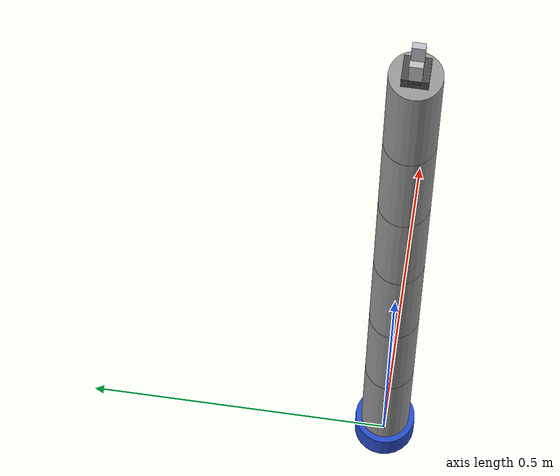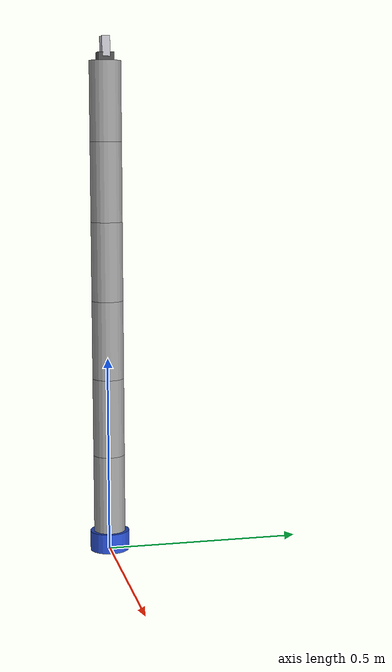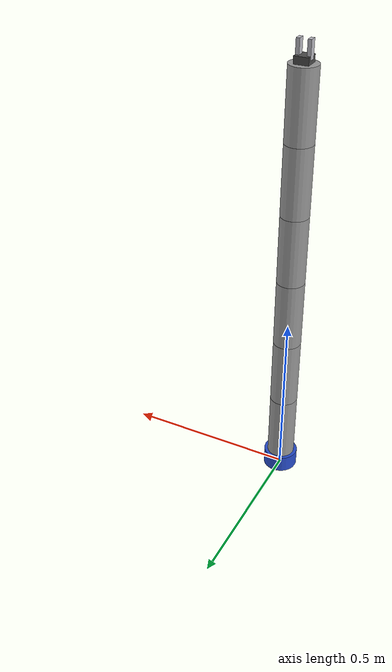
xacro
<?xml version="1.0"?>
<robot xmlns:xacro="http://www.ros.org/wiki/xacro" name="my_robot_description">

  <!-- Properties -->
  <xacro:property name="base_radius" value="0.05"/>
  <xacro:property name="base_height" value="0.05"/>
  <xacro:property name="joint_radius" value="0.04"/>
  <xacro:property name="joint_length" value="0.2"/>
  <xacro:property name="finger_length" value="0.05"/>
  <xacro:property name="finger_width" value="0.01"/>
  <xacro:property name="gripper_spacing" value="0.03"/>

  <!-- Arm Base Link -->
  <link name="arm_base_link">
    <visual>
      <geometry>
        <cylinder radius="${base_radius}" length="${base_height}"/>
      </geometry>
      <origin xyz="0 0 ${base_height / 2.0}" rpy="0 0 0"/>
      <material name="blue"/>
    </visual>
  </link>

  <!-- First joint connects to arm_base_link -->
  <link name="joint_0_link">
    <visual>
      <geometry>
        <cylinder radius="${joint_radius}" length="${joint_length}"/>
      </geometry>
      <origin xyz="0 0 ${joint_length / 2.0}" rpy="0 0 0"/>
      <material name="grey"/>
    </visual>
  </link>

  <joint name="joint_0_joint" type="revolute">
    <parent link="arm_base_link"/>
    <child link="joint_0_link"/>
    <origin xyz="0 0 ${base_height}" rpy="0 0 0"/>
    <axis xyz="0 0 1"/>
    <limit lower="-1.57" upper="1.57" effort="100" velocity="1.0"/>
    <dynamics friction="0.1" damping="0.1"/>
  </joint>

  <!-- Arm Segments -->
  <xacro:macro name="arm_segment" params="index">
    <link name="joint_${index}_link">
      <visual>
        <geometry>
          <cylinder radius="${joint_radius}" length="${joint_length}"/>
        </geometry>
        <origin xyz="0 0 ${joint_length / 2.0}" rpy="0 0 0"/>
        <material name="grey"/>
      </visual>
    </link>

    <joint name="joint_${index}_joint" type="revolute">
      <parent link="joint_${index - 1}_link"/>
      <child link="joint_${index}_link"/>
      <origin xyz="0 0 ${joint_length}" rpy="0 0 0"/>
      <axis xyz="0 1 0"/>
      <limit lower="-1.57" upper="1.57" effort="100" velocity="1.0"/>
      <dynamics friction="0.1" damping="0.1"/>
    </joint>
  </xacro:macro>

  <xacro:arm_segment index="1"/>
  <xacro:arm_segment index="2"/>
  <xacro:arm_segment index="3"/>
  <xacro:arm_segment index="4"/>
  <xacro:arm_segment index="5"/>

  <!-- Gripper Base Link -->
  <link name="gripper_base_link">
    <visual>
      <geometry>
        <box size="0.04 0.04 0.02"/>
      </geometry>
      <origin xyz="0 0 0.01" rpy="0 0 0"/>
      <material name="dark_grey"/>
    </visual>
  </link>

  <joint name="gripper_base_joint" type="fixed">
    <parent link="joint_5_link"/>
    <child link="gripper_base_link"/>
    <origin xyz="0 0 ${joint_length}" rpy="0 0 0"/>
  </joint>

  <!-- Left Finger -->
  <link name="left_finger_link">
    <visual>
      <geometry>
        <box size="${finger_width} 0.02 ${finger_length}"/>
      </geometry>
      <origin xyz="0 0 ${finger_length / 2.0}" rpy="0 0 0"/>
      <material name="silver"/>
    </visual>
  </link>

  <joint name="left_finger_joint" type="revolute">
    <parent link="gripper_base_link"/>
    <child link="left_finger_link"/>
    <origin xyz="${gripper_spacing / 2.0} 0 0.01" rpy="0 0 0"/>
    <axis xyz="1 0 0"/>
    <limit lower="0.0" upper="0.03" effort="10" velocity="1.0"/>
    <dynamics friction="0.01" damping="0.01"/>
  </joint>

  <!-- Right Finger -->
  <link name="right_finger_link">
    <visual>
      <geometry>
        <box size="${finger_width} 0.02 ${finger_length}"/>
      </geometry>
      <origin xyz="0 0 ${finger_length / 2.0}" rpy="0 0 0"/>
      <material name="silver"/>
    </visual>
  </link>

  <joint name="right_finger_joint" type="revolute">
    <parent link="gripper_base_link"/>
    <child link="right_finger_link"/>
    <origin xyz="-${gripper_spacing / 2.0} 0 0.01" rpy="0 0 0"/>
    <axis xyz="1 0 0"/>
    <limit lower="-0.03" upper="0.0" effort="10" velocity="1.0"/>
    <dynamics friction="0.01" damping="0.01"/>
  </joint>

</robot>
